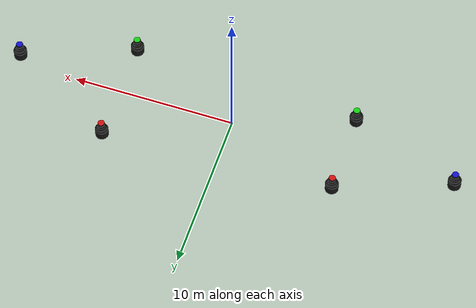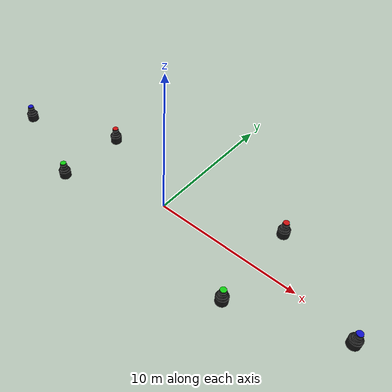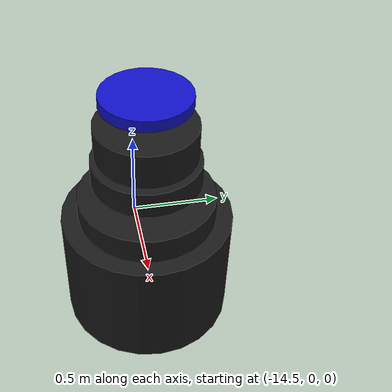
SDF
<sdf version="1.10">
 <world name="robotx_task1_uav_view">
  <gravity>0 0 -9.81</gravity>
  <physics name="physics" type="ode">
   <max_step_size>0.002</max_step_size>
   <real_time_factor>1.0</real_time_factor>
  </physics>
  <scene>
   <ambient>0.27 0.27 0.27 1.0</ambient>
   <background>0.62 0.75 0.92 1.0</background>
   <shadows>true</shadows>
   <grid>false</grid>
  </scene>
  <light name="sun" type="directional">
   <pose>0 0 300 0 0 0</pose>
   <diffuse>1.00 0.98 0.94 1.0</diffuse>
   <specular>1.00 1.00 1.00 1.0</specular>
   <direction>0.26 -0.12 -1.0</direction>
   <attenuation>
    <range>2500</range>
    <constant>0.85</constant>
    <linear>0.001</linear>
    <quadratic>0.00005</quadratic>
   </attenuation>
  </light>
  <plugin filename="gz-sim-physics-system" name="gz::sim::systems::Physics"/>
  <plugin filename="gz-sim-user-commands-system" name="gz::sim::systems::UserCommands"/>
  <plugin filename="gz-sim-scene-broadcaster-system" name="gz::sim::systems::SceneBroadcaster"/>
  <plugin filename="gz-sim-sensors-system" name="gz::sim::systems::Sensors">
   <render_engine>ogre2</render_engine>
  </plugin>
  <include>
   <uri>model://robotx_buoy_red_led</uri>
   <name>safe_passage_red_1</name>
   <pose>-7.039 2.488 0.0 0 0 0</pose>
  </include>
  <include>
   <uri>model://robotx_buoy_green_led</uri>
   <name>safe_passage_green_1</name>
   <pose>-7.039 -2.488 0.0 0 0 0</pose>
  </include>
  <include>
   <uri>model://robotx_buoy_red_led</uri>
   <name>safe_passage_red_2</name>
   <pose>7.164 3.178 0.0 0 0 0</pose>
  </include>
  <include>
   <uri>model://robotx_buoy_green_led</uri>
   <name>safe_passage_green_2</name>
   <pose>7.164 -3.178 0.0 0 0 0</pose>
  </include>
  <include>
   <uri>model://robotx_buoy_blue_led</uri>
   <name>start_marker_blue</name>
   <pose>-13.852 -0.029 0.0 0 0 0</pose>
  </include>
  <include>
   <uri>model://robotx_buoy_blue_led</uri>
   <name>end_marker_blue</name>
   <pose>13.842 -0.598 0.0 0 0 0</pose>
  </include>
  <model name="uav_dataset_camera">
   <static>true</static>
   <pose>0 0 26 0 0 0</pose>
   <link name="camera_link">
    <sensor name="top_down_rgb" type="camera">
     <always_on>true</always_on>
     <update_rate>20</update_rate>
     <pose>0 0 0 0 1.57079632679 0</pose>
     <camera>
      <horizontal_fov>1.05</horizontal_fov>
      <image><width>1920</width><height>1080</height><format>R8G8B8</format></image>
      <clip><near>0.2</near><far>600</far></clip>
     </camera>
     <topic>/robotx/uav/camera/image_raw</topic>
     <visualize>true</visualize>
    </sensor>
   </link>
  </model>
 </world>
</sdf>

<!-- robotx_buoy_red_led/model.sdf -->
<sdf version="1.10">
  <model name="robotx_buoy_red_led">
    <static>false</static>
    <pose>0 0 0 0 0 0</pose>
    <!-- Controlled bobbing for stable, realistic motion without toppling -->
    <plugin filename="librobotx_bobbing_plugin.dylib" name="robotx::BobbingPlugin">
      <amplitude_z_m>0.03</amplitude_z_m>
      <frequency_hz>0.18</frequency_hz>
      <drift_xy_m>0.02</drift_xy_m>
      <drift_frequency_hz>0.025</drift_frequency_hz>
      <roll_deg>0.4</roll_deg>
      <pitch_deg>0.5</pitch_deg>
      <phase_rad>0.0</phase_rad>
    </plugin>
    <link name="body_link">
      <gravity>false</gravity>
      <enable_wind>false</enable_wind>
      <collision name="body_collision_lower">
        <pose>0 0 0.28 0 0 0</pose>
        <geometry>
          <cylinder>
            <radius>0.40</radius>
            <length>0.56</length>
          </cylinder>
        </geometry>
      </collision>
      <collision name="body_collision_mid">
        <pose>0 0 0.62 0 0 0</pose>
        <geometry>
          <cylinder>
            <radius>0.32</radius>
            <length>0.12</length>
          </cylinder>
        </geometry>
      </collision>
      <collision name="body_collision_upper">
        <pose>0 0 0.82 0 0 0</pose>
        <geometry>
          <cylinder>
            <radius>0.25</radius>
            <length>0.12</length>
          </cylinder>
        </geometry>
      </collision>
      <collision name="body_collision_collar">
        <pose>0 0 0.98 0 0 0</pose>
        <geometry>
          <cylinder>
            <radius>0.23</radius>
            <length>0.16</length>
          </cylinder>
        </geometry>
      </collision>

      <visual name="body_visual_lower">
        <pose>0 0 0.28 0 0 0</pose>
        <geometry>
          <cylinder>
            <radius>0.40</radius>
            <length>0.56</length>
          </cylinder>
        </geometry>
        <material>
          <ambient>0.05 0.05 0.05 1</ambient>
          <diffuse>0.10 0.10 0.10 1</diffuse>
          <specular>0.20 0.20 0.20 1</specular>
        </material>
      </visual>
      <visual name="body_visual_mid">
        <pose>0 0 0.62 0 0 0</pose>
        <geometry>
          <cylinder>
            <radius>0.32</radius>
            <length>0.12</length>
          </cylinder>
        </geometry>
        <material>
          <ambient>0.05 0.05 0.05 1</ambient>
          <diffuse>0.10 0.10 0.10 1</diffuse>
          <specular>0.20 0.20 0.20 1</specular>
        </material>
      </visual>
      <visual name="body_visual_upper">
        <pose>0 0 0.82 0 0 0</pose>
        <geometry>
          <cylinder>
            <radius>0.25</radius>
            <length>0.12</length>
          </cylinder>
        </geometry>
        <material>
          <ambient>0.05 0.05 0.05 1</ambient>
          <diffuse>0.10 0.10 0.10 1</diffuse>
          <specular>0.20 0.20 0.20 1</specular>
        </material>
      </visual>
      <visual name="body_visual_collar">
        <pose>0 0 0.98 0 0 0</pose>
        <geometry>
          <cylinder>
            <radius>0.23</radius>
            <length>0.16</length>
          </cylinder>
        </geometry>
        <material>
          <ambient>0.05 0.05 0.05 1</ambient>
          <diffuse>0.10 0.10 0.10 1</diffuse>
          <specular>0.20 0.20 0.20 1</specular>
        </material>
      </visual>

      <visual name="beacon_cap">
        <pose>0 0 1.18 0 0 0</pose>
        <geometry>
          <cylinder>
            <radius>0.20</radius>
            <length>0.05</length>
          </cylinder>
        </geometry>
        <material>
          <ambient>0.22 0.02 0.02 1</ambient>
          <diffuse>0.78 0.06 0.06 1</diffuse>
          <emissive>1.00 0.12 0.12 1</emissive>
        </material>
      </visual>
      <light name="top_beacon" type="spot">
        <pose>0 0 1.21 0 0 0</pose>
        <cast_shadows>false</cast_shadows>
        <diffuse>1 0 0 1</diffuse>
        <specular>0.4 0.0 0.0 1</specular>
        <attenuation>
          <range>55</range>
          <constant>0.20</constant>
          <linear>0.02</linear>
          <quadratic>0.0015</quadratic>
        </attenuation>
        <direction>0 0 1</direction>
        <spot>
          <inner_angle>0.16</inner_angle>
          <outer_angle>0.30</outer_angle>
          <falloff>1.4</falloff>
        </spot>
      </light>
    </link>
  </model>
</sdf>

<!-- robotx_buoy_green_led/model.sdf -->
<sdf version="1.10">
  <model name="robotx_buoy_green_led">
    <static>false</static>
    <pose>0 0 0 0 0 0</pose>
    <!-- Controlled bobbing for stable, realistic motion without toppling -->
    <plugin filename="librobotx_bobbing_plugin.dylib" name="robotx::BobbingPlugin">
      <amplitude_z_m>0.03</amplitude_z_m>
      <frequency_hz>0.18</frequency_hz>
      <drift_xy_m>0.02</drift_xy_m>
      <drift_frequency_hz>0.025</drift_frequency_hz>
      <roll_deg>0.4</roll_deg>
      <pitch_deg>0.5</pitch_deg>
      <phase_rad>2.1</phase_rad>
    </plugin>
    <link name="body_link">
      <gravity>false</gravity>
      <enable_wind>false</enable_wind>
      <collision name="body_collision_lower">
        <pose>0 0 0.28 0 0 0</pose>
        <geometry>
          <cylinder>
            <radius>0.40</radius>
            <length>0.56</length>
          </cylinder>
        </geometry>
      </collision>
      <collision name="body_collision_mid">
        <pose>0 0 0.62 0 0 0</pose>
        <geometry>
          <cylinder>
            <radius>0.32</radius>
            <length>0.12</length>
          </cylinder>
        </geometry>
      </collision>
      <collision name="body_collision_upper">
        <pose>0 0 0.82 0 0 0</pose>
        <geometry>
          <cylinder>
            <radius>0.25</radius>
            <length>0.12</length>
          </cylinder>
        </geometry>
      </collision>
      <collision name="body_collision_collar">
        <pose>0 0 0.98 0 0 0</pose>
        <geometry>
          <cylinder>
            <radius>0.23</radius>
            <length>0.16</length>
          </cylinder>
        </geometry>
      </collision>

      <visual name="body_visual_lower">
        <pose>0 0 0.28 0 0 0</pose>
        <geometry>
          <cylinder>
            <radius>0.40</radius>
            <length>0.56</length>
          </cylinder>
        </geometry>
        <material>
          <ambient>0.05 0.05 0.05 1</ambient>
          <diffuse>0.10 0.10 0.10 1</diffuse>
          <specular>0.20 0.20 0.20 1</specular>
        </material>
      </visual>
      <visual name="body_visual_mid">
        <pose>0 0 0.62 0 0 0</pose>
        <geometry>
          <cylinder>
            <radius>0.32</radius>
            <length>0.12</length>
          </cylinder>
        </geometry>
        <material>
          <ambient>0.05 0.05 0.05 1</ambient>
          <diffuse>0.10 0.10 0.10 1</diffuse>
          <specular>0.20 0.20 0.20 1</specular>
        </material>
      </visual>
      <visual name="body_visual_upper">
        <pose>0 0 0.82 0 0 0</pose>
        <geometry>
          <cylinder>
            <radius>0.25</radius>
            <length>0.12</length>
          </cylinder>
        </geometry>
        <material>
          <ambient>0.05 0.05 0.05 1</ambient>
          <diffuse>0.10 0.10 0.10 1</diffuse>
          <specular>0.20 0.20 0.20 1</specular>
        </material>
      </visual>
      <visual name="body_visual_collar">
        <pose>0 0 0.98 0 0 0</pose>
        <geometry>
          <cylinder>
            <radius>0.23</radius>
            <length>0.16</length>
          </cylinder>
        </geometry>
        <material>
          <ambient>0.05 0.05 0.05 1</ambient>
          <diffuse>0.10 0.10 0.10 1</diffuse>
          <specular>0.20 0.20 0.20 1</specular>
        </material>
      </visual>

      <visual name="beacon_cap">
        <pose>0 0 1.18 0 0 0</pose>
        <geometry>
          <cylinder>
            <radius>0.20</radius>
            <length>0.05</length>
          </cylinder>
        </geometry>
        <material>
          <ambient>0.02 0.22 0.02 1</ambient>
          <diffuse>0.06 0.78 0.06 1</diffuse>
          <emissive>0.12 1.00 0.12 1</emissive>
        </material>
      </visual>
      <light name="top_beacon" type="spot">
        <pose>0 0 1.21 0 0 0</pose>
        <cast_shadows>false</cast_shadows>
        <diffuse>0 1 0 1</diffuse>
        <specular>0.0 0.4 0.0 1</specular>
        <attenuation>
          <range>55</range>
          <constant>0.20</constant>
          <linear>0.02</linear>
          <quadratic>0.0015</quadratic>
        </attenuation>
        <direction>0 0 1</direction>
        <spot>
          <inner_angle>0.16</inner_angle>
          <outer_angle>0.30</outer_angle>
          <falloff>1.4</falloff>
        </spot>
      </light>
    </link>
  </model>
</sdf>

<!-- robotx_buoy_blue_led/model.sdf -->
<sdf version="1.10">
  <model name="robotx_buoy_blue_led">
    <static>false</static>
    <pose>0 0 0 0 0 0</pose>
    <!-- Controlled bobbing for stable, realistic motion without toppling -->
    <plugin filename="librobotx_bobbing_plugin.dylib" name="robotx::BobbingPlugin">
      <amplitude_z_m>0.03</amplitude_z_m>
      <frequency_hz>0.18</frequency_hz>
      <drift_xy_m>0.02</drift_xy_m>
      <drift_frequency_hz>0.025</drift_frequency_hz>
      <roll_deg>0.4</roll_deg>
      <pitch_deg>0.5</pitch_deg>
      <phase_rad>4.2</phase_rad>
    </plugin>
    <link name="body_link">
      <gravity>false</gravity>
      <enable_wind>false</enable_wind>
      <collision name="body_collision_lower">
        <pose>0 0 0.28 0 0 0</pose>
        <geometry>
          <cylinder>
            <radius>0.40</radius>
            <length>0.56</length>
          </cylinder>
        </geometry>
      </collision>
      <collision name="body_collision_mid">
        <pose>0 0 0.62 0 0 0</pose>
        <geometry>
          <cylinder>
            <radius>0.32</radius>
            <length>0.12</length>
          </cylinder>
        </geometry>
      </collision>
      <collision name="body_collision_upper">
        <pose>0 0 0.82 0 0 0</pose>
        <geometry>
          <cylinder>
            <radius>0.25</radius>
            <length>0.12</length>
          </cylinder>
        </geometry>
      </collision>
      <collision name="body_collision_collar">
        <pose>0 0 0.98 0 0 0</pose>
        <geometry>
          <cylinder>
            <radius>0.23</radius>
            <length>0.16</length>
          </cylinder>
        </geometry>
      </collision>

      <visual name="body_visual_lower">
        <pose>0 0 0.28 0 0 0</pose>
        <geometry>
          <cylinder>
            <radius>0.40</radius>
            <length>0.56</length>
          </cylinder>
        </geometry>
        <material>
          <ambient>0.05 0.05 0.05 1</ambient>
          <diffuse>0.10 0.10 0.10 1</diffuse>
          <specular>0.20 0.20 0.20 1</specular>
        </material>
      </visual>
      <visual name="body_visual_mid">
        <pose>0 0 0.62 0 0 0</pose>
        <geometry>
          <cylinder>
            <radius>0.32</radius>
            <length>0.12</length>
          </cylinder>
        </geometry>
        <material>
          <ambient>0.05 0.05 0.05 1</ambient>
          <diffuse>0.10 0.10 0.10 1</diffuse>
          <specular>0.20 0.20 0.20 1</specular>
        </material>
      </visual>
      <visual name="body_visual_upper">
        <pose>0 0 0.82 0 0 0</pose>
        <geometry>
          <cylinder>
            <radius>0.25</radius>
            <length>0.12</length>
          </cylinder>
        </geometry>
        <material>
          <ambient>0.05 0.05 0.05 1</ambient>
          <diffuse>0.10 0.10 0.10 1</diffuse>
          <specular>0.20 0.20 0.20 1</specular>
        </material>
      </visual>
      <visual name="body_visual_collar">
        <pose>0 0 0.98 0 0 0</pose>
        <geometry>
          <cylinder>
            <radius>0.23</radius>
            <length>0.16</length>
          </cylinder>
        </geometry>
        <material>
          <ambient>0.05 0.05 0.05 1</ambient>
          <diffuse>0.10 0.10 0.10 1</diffuse>
          <specular>0.20 0.20 0.20 1</specular>
        </material>
      </visual>

      <visual name="beacon_cap">
        <pose>0 0 1.18 0 0 0</pose>
        <geometry>
          <cylinder>
            <radius>0.20</radius>
            <length>0.05</length>
          </cylinder>
        </geometry>
        <material>
          <ambient>0.02 0.02 0.22 1</ambient>
          <diffuse>0.06 0.06 0.78 1</diffuse>
          <emissive>0.12 0.12 1.00 1</emissive>
        </material>
      </visual>
      <light name="top_beacon" type="spot">
        <pose>0 0 1.21 0 0 0</pose>
        <cast_shadows>false</cast_shadows>
        <diffuse>0 0 1 1</diffuse>
        <specular>0.0 0.0 0.4 1</specular>
        <attenuation>
          <range>55</range>
          <constant>0.20</constant>
          <linear>0.02</linear>
          <quadratic>0.0015</quadratic>
        </attenuation>
        <direction>0 0 1</direction>
        <spot>
          <inner_angle>0.16</inner_angle>
          <outer_angle>0.30</outer_angle>
          <falloff>1.4</falloff>
        </spot>
      </light>
    </link>
  </model>
</sdf>
